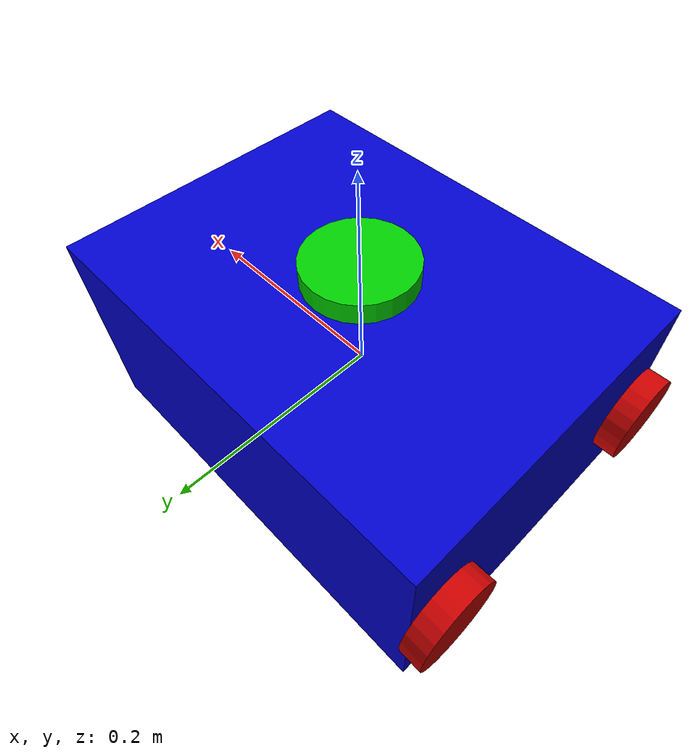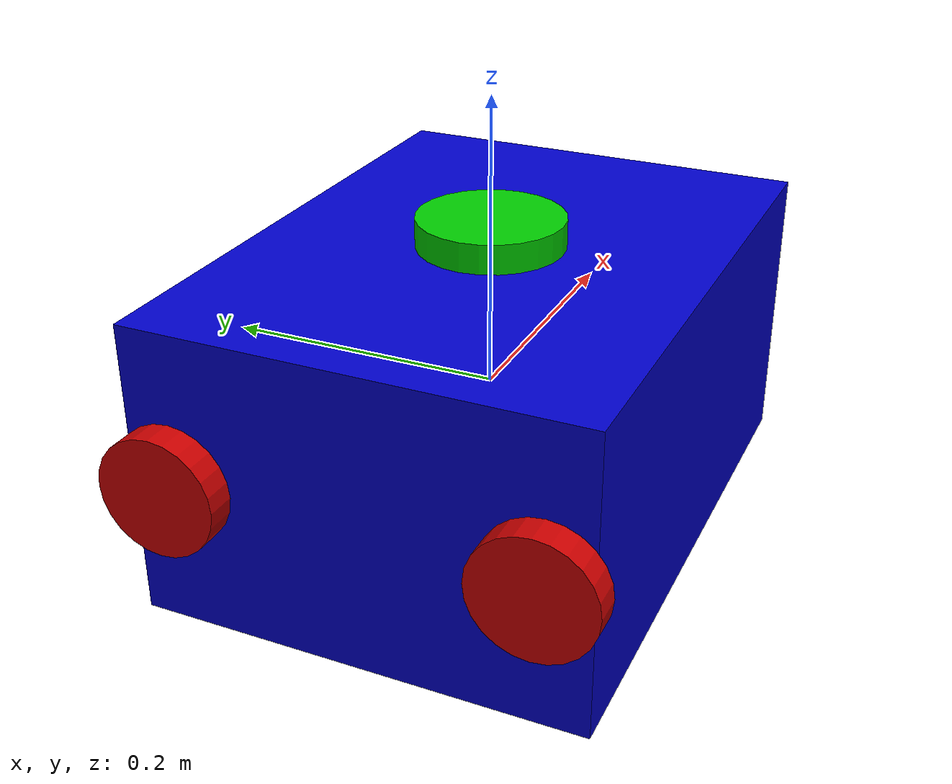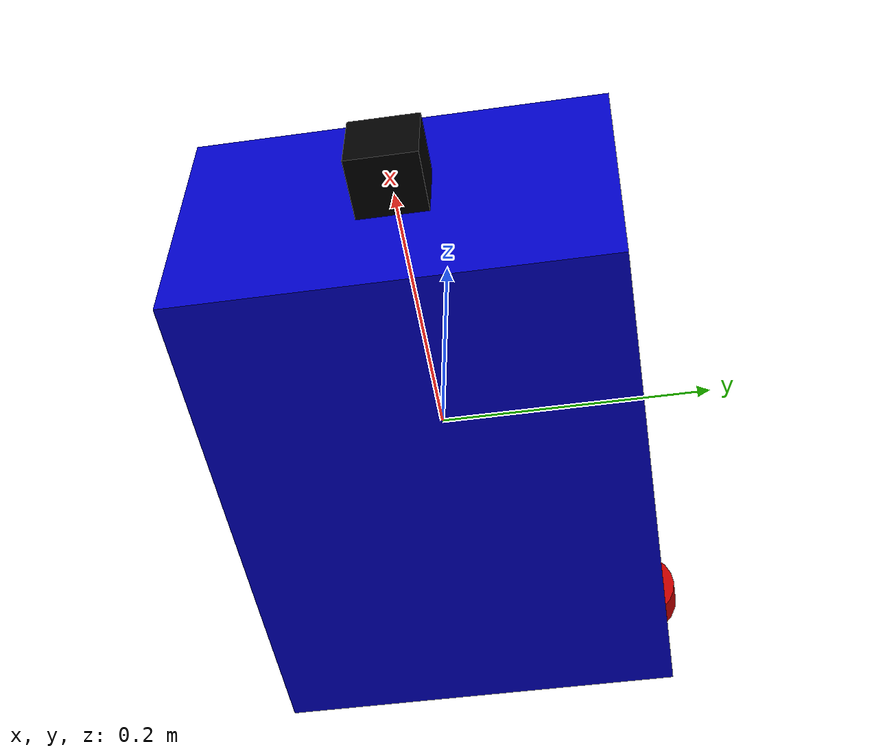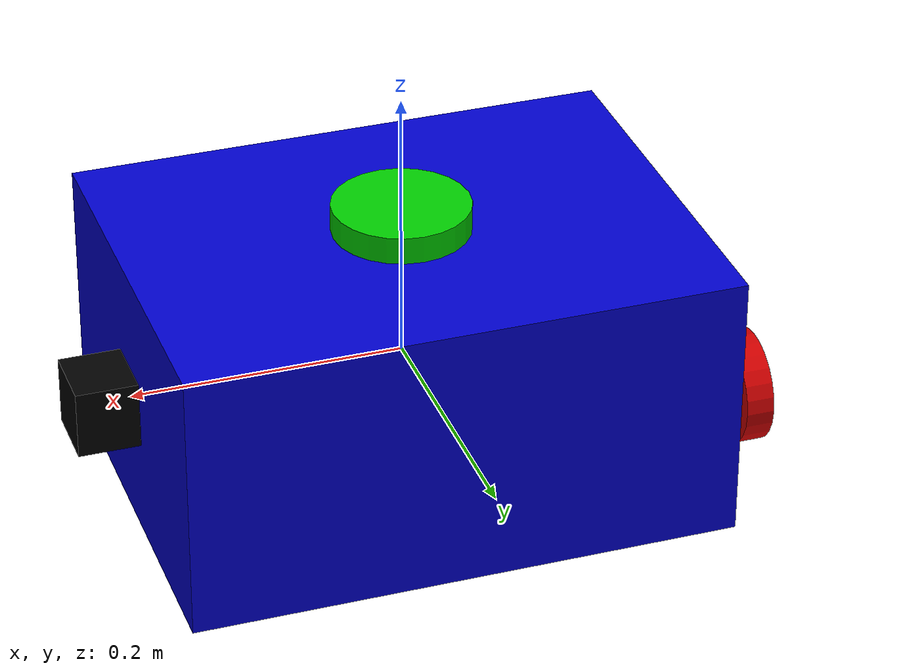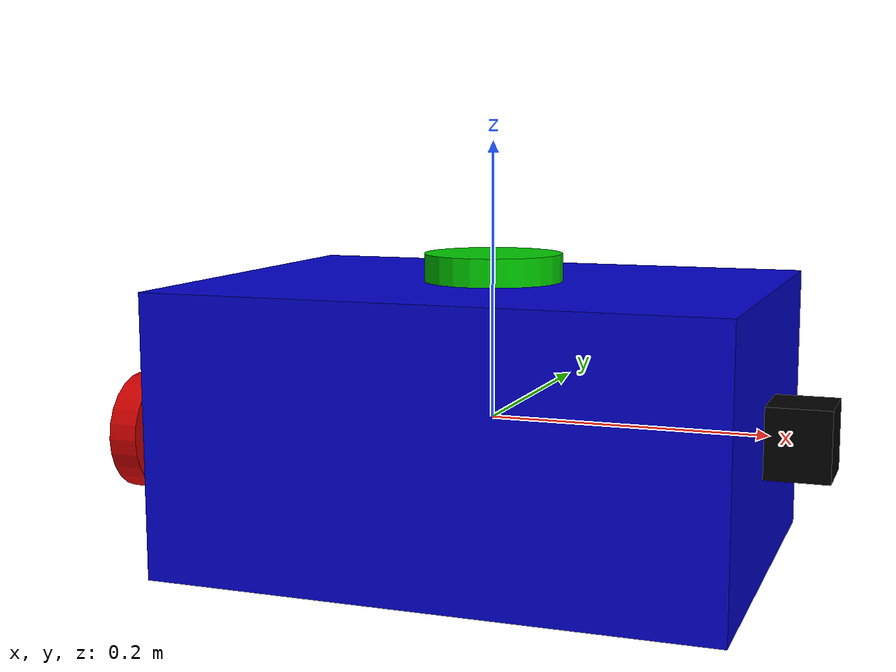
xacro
<?xml version="1.0"?>
<robot xmlns:xacro="http://www.ros.org/wiki/xacro" name="sauvc_bot">

    <material name="blue"><color rgba="0 0 0.8 1"/></material>
    <material name="red"><color rgba="0.8 0 0 1"/></material>
    <material name="green"><color rgba="0 0.8 0 1"/></material>
    <material name="black"><color rgba="0 0 0 1"/></material>

    <link name="base_link">
        <visual>
            <geometry><box size="0.4 0.3 0.2"/></geometry>
            <material name="blue"/>
        </visual>
        <collision>
            <geometry><box size="0.4 0.3 0.2"/></geometry>
        </collision>
        <inertial>
            <mass value="23.7"/>
            <origin xyz="0 0 -0.1" rpy="0 0 0"/>
            <inertia ixx="0.8" ixy="0" ixz="0" iyy="0.8" iyz="0" izz="0.8"/>
        </inertial>
    </link>

    <gazebo reference="base_link">
        <linear_damping>2.0</linear_damping>  <angular_damping>15.0</angular_damping> </gazebo>

    <link name="thruster_left_link">
        <visual><geometry><cylinder radius="0.04" length="0.02"/></geometry>
        <material name="red"/></visual>
        <inertial><mass value="0.1"/><inertia ixx="0.001" ixy="0" ixz="0" iyy="0.001" iyz="0" izz="0.001"/></inertial>
    </link>
    <joint name="thruster_left_joint" type="continuous">
        <parent link="base_link"/>
        <child link="thruster_left_link"/>
        <origin xyz="-0.21 0.12 0" rpy="0 1.57 0"/>
        <axis xyz="0 0 1"/>
    </joint>
    <gazebo>
        <plugin filename="gz-sim-thruster-system" name="gz::sim::systems::Thruster">
            <namespace>sauvc_bot</namespace>
            <joint_name>thruster_left_joint</joint_name>
            <thrust_coefficient>0.005</thrust_coefficient>
            <fluid_density>1000</fluid_density>
            <propeller_diameter>0.1</propeller_diameter>
            <velocity_control>true</velocity_control>
        </plugin>
    </gazebo>

    <link name="thruster_right_link">
        <visual><geometry><cylinder radius="0.04" length="0.02"/></geometry>
        <material name="red"/></visual>
        <inertial><mass value="0.1"/><inertia ixx="0.001" ixy="0" ixz="0" iyy="0.001" iyz="0" izz="0.001"/></inertial>
    </link>
    <joint name="thruster_right_joint" type="continuous">
        <parent link="base_link"/>
        <child link="thruster_right_link"/>
        <origin xyz="-0.21 -0.12 0" rpy="0 1.57 0"/>
        <axis xyz="0 0 1"/>
    </joint>
    <gazebo>
        <plugin filename="gz-sim-thruster-system" name="gz::sim::systems::Thruster">
            <namespace>sauvc_bot</namespace>
            <joint_name>thruster_right_joint</joint_name>
            <thrust_coefficient>0.005</thrust_coefficient>
            <fluid_density>1000</fluid_density>
            <propeller_diameter>0.1</propeller_diameter>
            <velocity_control>true</velocity_control>
        </plugin>
    </gazebo>

    <link name="vertical_propeller_link">
        <visual><geometry><cylinder radius="0.05" length="0.02"/></geometry>
        <material name="green"/></visual>
        <inertial><mass value="0.1"/><inertia ixx="0.001" ixy="0" ixz="0" iyy="0.001" iyz="0" izz="0.001"/></inertial>
    </link>
    <joint name="vertical_propeller_joint" type="continuous">
        <parent link="base_link"/>
        <child link="vertical_propeller_link"/>
        <origin xyz="0 0 0.11" rpy="0 0 0"/>
        <axis xyz="0 0 1"/>
    </joint>
    <gazebo>
        <plugin filename="gz-sim-thruster-system" name="gz::sim::systems::Thruster">
            <namespace>sauvc_bot</namespace>
            <joint_name>vertical_propeller_joint</joint_name>
            <thrust_coefficient>0.005</thrust_coefficient>
            <fluid_density>1000</fluid_density>
            <propeller_diameter>0.1</propeller_diameter>
            <velocity_control>true</velocity_control>
        </plugin>
    </gazebo>

    <link name="camera_link">
        <visual><geometry><box size="0.05 0.05 0.05"/></geometry>
        <material name="black"/></visual>
    </link>
    <joint name="camera_joint" type="fixed">
        <parent link="base_link"/>
        <child link="camera_link"/>
        <origin xyz="0.22 0 0" rpy="0 0 0"/>
    </joint>
    <gazebo reference="camera_link">
        <sensor name="front_camera" type="camera">
            <pose>0 0 0 0 0 0</pose>
            <visualize>true</visualize>
            <update_rate>10</update_rate>
            <topic>/camera/image_raw</topic>
            <camera>
                <horizontal_fov>1.089</horizontal_fov>
                <image><width>640</width><height>480</height><format>R8G8B8</format></image>
                <clip><near>0.1</near><far>100</far></clip>
            </camera>
        </sensor>
    </gazebo>

</robot>
